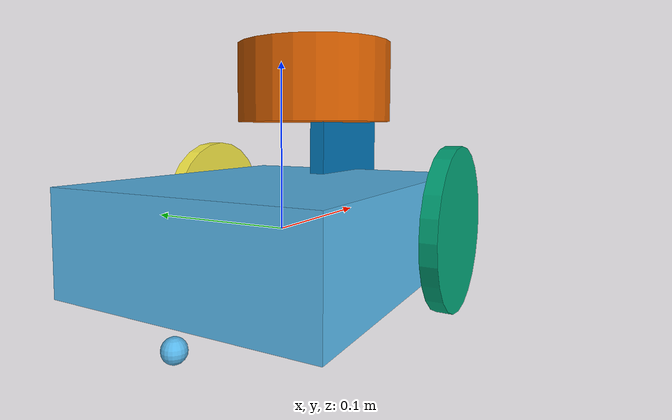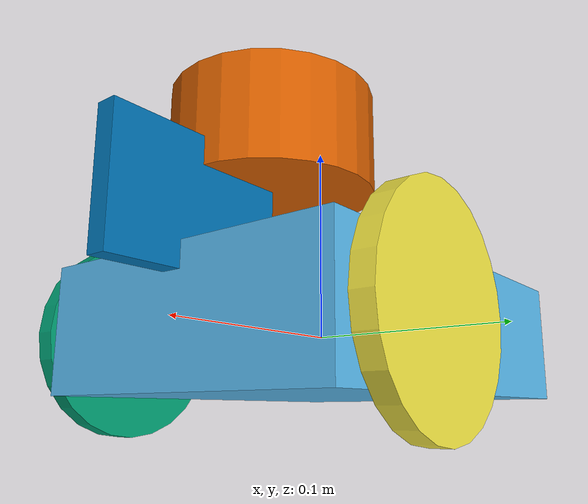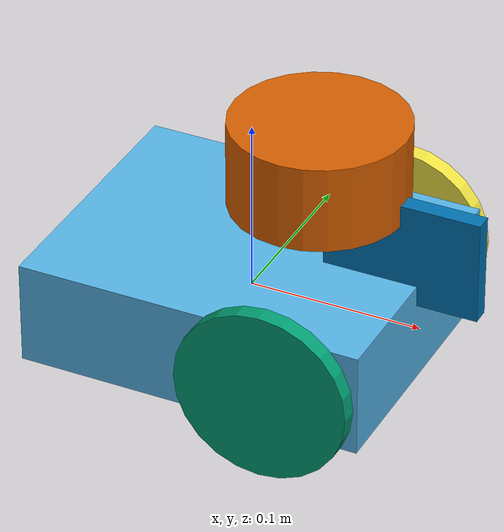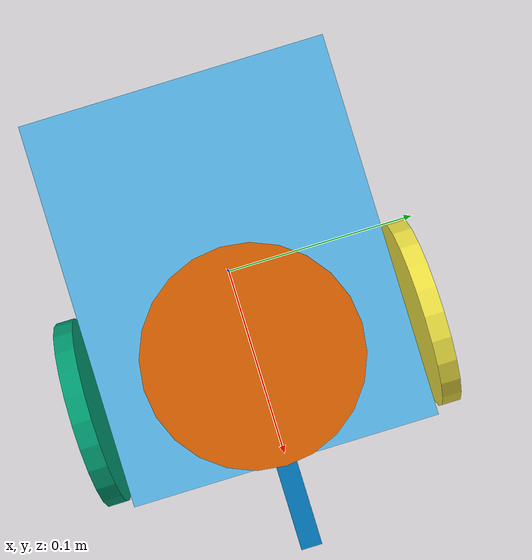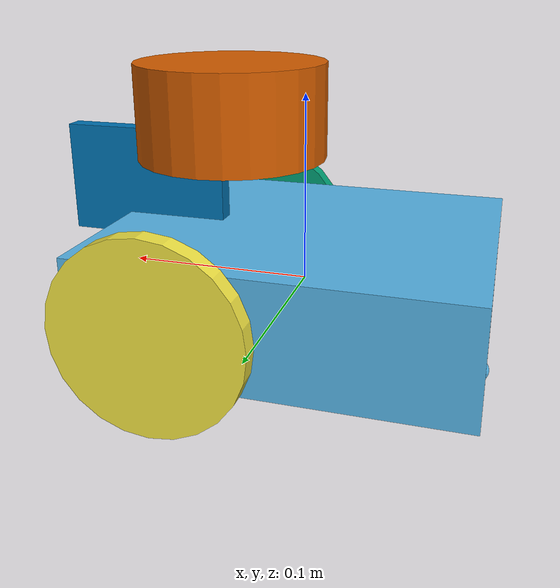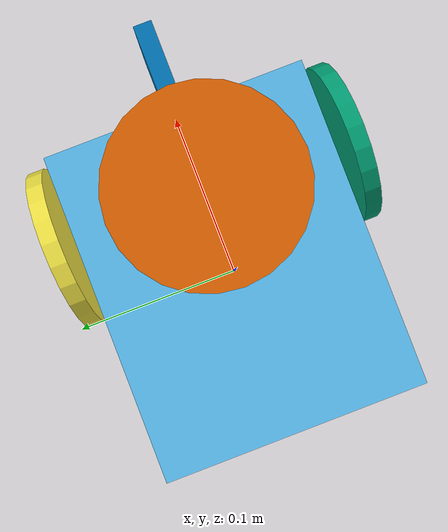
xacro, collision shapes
<?xml version="1.0" ?>
<!-- PuzzleBot differential drive -->
<robot name="puzzlebot" xmlns:xacro="http://www.ros.org/wiki/xacro">

<xacro:include filename="$(find aranchubots_autonomousnavigation_puzzlebot)/urdf/materials.xacro" />
<xacro:include filename="$(find aranchubots_autonomousnavigation_puzzlebot)/urdf/parameters_real.xacro" />
<xacro:include filename="$(find aranchubots_autonomousnavigation_puzzlebot)/urdf/puzzlebot.gazebo" />
<xacro:include filename="$(find aranchubots_autonomousnavigation_puzzlebot)/urdf/macros.xacro" />

<!-- Dummy link to fiz robot chassis -->
  <link name="base_link">
    <pose>0 0 0 0 0 0</pose>
  </link>

  <joint name="base_link_to_chassis" type="fixed">
	   <parent link="base_link"/>
	   <child link="chassis"/>
  </joint>

  <link name="chassis">
    <pose>0 0 0 0 0 0</pose>
    <visual>

       <!-- with mesh  -->
      <origin xyz="0 0 0" rpy="${PI/2} 0 ${PI/2}"/>
          <geometry>
          	 <mesh filename="file://${mesh_chassis}"/>
          </geometry>
    </visual>

    <collision name="collision_chassis">
    	<origin rpy="0 0 0" xyz="0 0 0"/>
          <geometry>
            	 <box size="${chassisX} ${chassisY} ${chassisZ}"/>
          </geometry>
    </collision>
    <inertial>
      <mass value="${chassisMass}"/>
      <xacro:box_inertia m="${chassisMass}" x="${chassisX}" y="${chassisY}" z="${chassisZ}" />
    </inertial>

   <!-- agregar caster wheel en frame -->
    <collision>
	    <origin xyz="-0.095 0 -0.0425" rpy="0 0 0"/>
		  <geometry>
		     <sphere radius="${casterRadius}"/>
		  </geometry>
		        <surface>
	      <friction>
	         <ode>
	          <slip1>0.0</slip1>
	          <slip2>0.0</slip2>
	         </ode>
	      </friction>
      </surface>
	  </collision>

	  <visual>
      <origin xyz="-0.095 0 -0.0425" rpy="0 0 0"/>
          <geometry>
          	   <sphere radius="${casterRadius}"/>
          </geometry>
    </visual>

  </link>

 <!--RIGHT WHEEL -->
	<link name="right_wheel">
	  <visual>
	  	<origin xyz="0 0 0" rpy="-${PI/2} 0 0" />
	    <geometry>
	      <!-- with mesh-->
	      	<mesh filename="file://${mesh_wheel}"/>
	    </geometry>
	  </visual>

	  <collision>
		  <origin xyz="0 0 0 " rpy="-${PI/2} 0 0"/>
			  <geometry>
			     <cylinder length="${wheelHeight}" radius="${wheelRadius}" />
			  </geometry>
	  </collision>

	  <inertial>
		  <mass value="${wheelMass}"/>
		  <origin xyz="0 0 0" rpy="${PI/2} 0 0"/>
		  <xacro:wheel_inertia r="${wheelRadius}" l="${wheelHeight}" m="${wheelMass}"/>
	  </inertial>

	</link>

<!-- LEFT WHEEL -->
	<link name="left_wheel">
	  <visual>
	    <geometry>
        <!-- with mesh-->
	      	<mesh filename="file://${mesh_wheel}"/>
	    </geometry>
	    <origin xyz="0 0 0" rpy="${PI/2} 0 0" />
	  </visual>

	  <collision>
		  <origin xyz="0 0 0" rpy="${PI/2} 0 0" />
		  <geometry>
		     <cylinder length="${wheelHeight}" radius="${wheelRadius}"/>
		  </geometry>
	  </collision>

	  <inertial>
		  <mass value="${wheelMass}"/>
		  <origin xyz="0 0 0" rpy="${PI/2} 0 0"/>
		  <xacro:wheel_inertia r="${wheelRadius}" l="${wheelHeight}" m="${wheelMass}" />
	  </inertial>
	</link>

	 <!-- CAMERA-->
	 <link name="camera">
		    <inertial>
		    	    <origin rpy="0 0 0" xyz="0 0 0"/>
		          <mass value="0.007"/>
		          <inertia ixx="0.166667" ixy="0" ixz="0" iyy="0.166667" iyz="0" izz="0.166667"/>
		          <!-- ad camera inertia -->
		    </inertial>

		    <collision name="collision_chassis">
		    	    <origin rpy="0 0 0" xyz="0 0 0"/>
		          <geometry>
		               <box size="0.09 0.01 0.06" />
		          </geometry>
		    </collision>

		    <visual>

		         <!-- with mesh-->
		          <origin rpy="${PI/2} 0 ${PI/2}" xyz="0 0 0"/>
		          <geometry>
		          	<mesh filename="file://${mesh_camera}"/>
		          </geometry>
		    </visual>
  </link>

<!-- JOINTS  -->

  <joint name="base_to_right_w" type="continuous">
	  <parent link="chassis" />
	  <child link="right_wheel" />
	  <origin xyz="0.05 -0.09 0.0" />
		<axis xyz="0 1 0" rpy="0 0 0" />
	</joint>

	<joint name="base_to_left_w" type="continuous">
	  <parent link="chassis" />
	  <child link="left_wheel" />
	  <origin xyz="0.05 0.09 0" />
	  <axis xyz="0 1 0" rpy="0 0 0" />
	</joint>

<joint name="camera_to_base" type="fixed">
	  <parent link="chassis" />
	  <child link="camera" />
	  <origin xyz="0.09 0 0.048" />
  </joint>

<!-- TRANSMISSIONS (For a more complex model and it represents actuator attributes) -->
<transmission name="right_wheel_trans">
    <type>transmission_interface/SimpleTransmission</type>
    <joint name="base_to_right_w">
    	<hardwareInterface>hardware_interface/EffortJointInterface</hardwareInterface>
    </joint>
    <actuator name="right_wheel_motor">
      <mechanicalReduction>34</mechanicalReduction>
       <hardwareInterface>hardware_interface/EffortJointInterface</hardwareInterface>
    </actuator>
  </transmission>

<transmission name="left_wheel_trans">
    <type>transmission_interface/SimpleTransmission</type>
    <joint name="base_to_left_w">
    	<hardwareInterface>hardware_interface/EffortJointInterface</hardwareInterface>
    </joint>
    <actuator name="left_wheel_motor">
      <mechanicalReduction>34</mechanicalReduction>
      <hardwareInterface>hardware_interface/EffortJointInterface</hardwareInterface>
    </actuator>
</transmission>

<!-- lidar link -->
<link name="base_laser_link">
    <inertial>
    <origin rpy="0 0 0" xyz="0 0 0"/>
        <mass value="0.007"/>
        <inertia ixx="0.166667" ixy="0" ixz="0" iyy="0.166667" iyz="0" izz="0.166667"/>

    </inertial>

    <visual>
      <origin xyz="0 0 0" rpy="0 0 0" />
      <geometry>
        <cylinder radius="0.05" length="0.05"/>
      </geometry>
    </visual>

    <collision>
      <origin xyz="0 0 0" rpy="0 0 0"/>
      <geometry>
        <cylinder radius="0.05" length="0.05"/>
      </geometry>
    </collision>
</link>

<!-- joint to attach the laser to the chassis -->
<joint name="joint_base_laser_link" type="fixed">
	<origin xyz="0.04 0 0.09" rpy="0 0.0 0"/>
	<parent link="chassis"/>
	<child link="base_laser_link"/>
</joint>

<joint name="joint_laser_laser_link" type="fixed">
	<origin xyz="0.0 0 0.0" rpy="0 0.0 3.14"/>
	<parent link="base_laser_link"/>
	<child link="laser"/>
</joint>

<link name="laser">

</link>

</robot>

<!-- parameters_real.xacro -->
<robot xmlns:xacro="http://www.ros.org/wiki/xacro">

<!--parameters for gazebo properties-->
<xacro:property name="PI" value="3.1415926535897931"/>

<xacro:property name="chassisX" value="0.2"/>
<xacro:property name="chassisY" value="0.16"/>
<xacro:property name="chassisZ" value="0.06"/>
<xacro:property name="chassisMass" value="0.710"/>

<xacro:property name="casterRadius" value="0.0065"/>
<xacro:property name="casterMass" value="0.012"/>

<xacro:property name="wheelHeight" value="0.01"/>
<xacro:property name="wheelRadius" value="0.05"/>
<xacro:property name="wheelPos" value="0.05"/>
<xacro:property name="wheelDistance" value="0.08"/>
<xacro:property name="wheelMass" value="0.03"/>

<xacro:property name="cameraSize" value="0.07"/>
<xacro:property name="cameraMass" value="0.018"/>
<xacro:property name="cameraX" value="0.02"/>
<xacro:property name="cameraY" value="0.04"/>
<xacro:property name="cameraZ" value="0.06"/>
<xacro:property name="mesh_chassis"  value="/home/esteb37/catkin_ws/src/aranchubots_autonomousnavigation_puzzlebot/meshes/chassis.stl" />
<xacro:property name="mesh_wheel"  value="/home/esteb37/catkin_ws/src/aranchubots_autonomousnavigation_puzzlebot/meshes/wheel.stl" />
<xacro:property name="mesh_camera"  value="/home/esteb37/catkin_ws/src/aranchubots_autonomousnavigation_puzzlebot/meshes/camera.stl" />

</robot>
